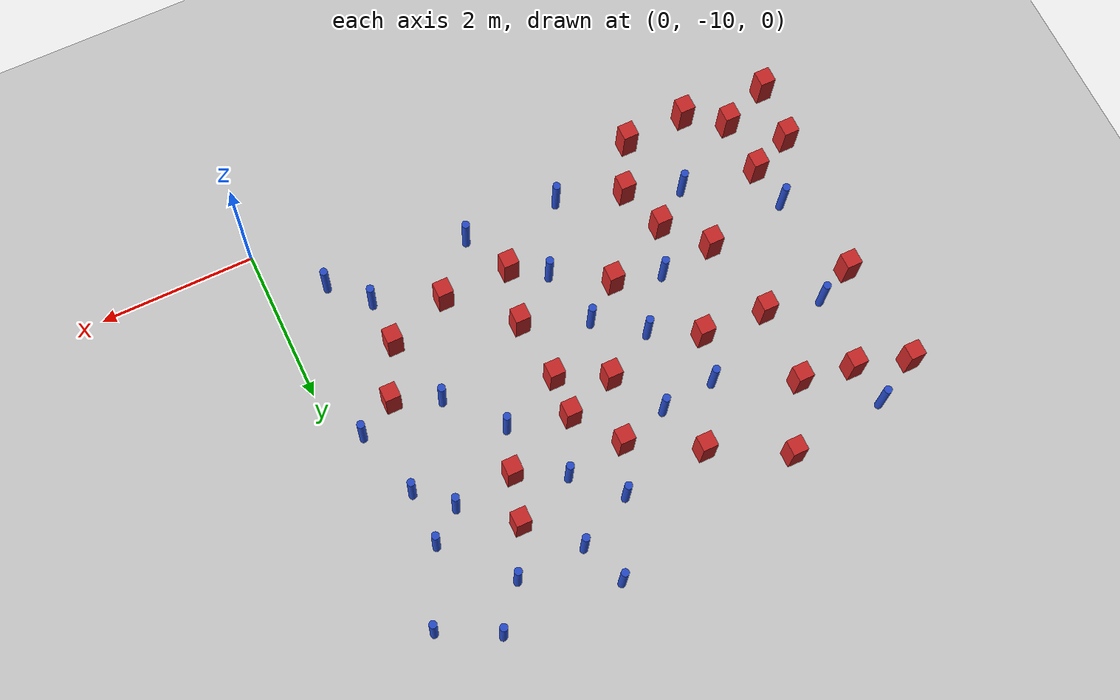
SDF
<sdf version="1.6">
 <world name="default">
  <model name="ground_plane">
   <static>1</static>
   <link name="link">
    <collision name="collision">
     <geometry><plane><normal>0 0 1</normal><size>100 100</size></plane></geometry>
     <surface><friction><ode><mu>100</mu><mu2>50</mu2></ode></friction></surface>
    </collision>
    <visual name="visual">
     <cast_shadows>0</cast_shadows>
     <geometry><plane><normal>0 0 1</normal><size>100 100</size></plane></geometry>
     <material>
      <ambient>1.0 1.0 1.0 1.0</ambient>
      <diffuse>0.8 0.8 0.8 1.0</diffuse>
      <specular>0.01 0.01 0.01 1.000000</specular>
     </material>
    </visual>
   </link>
  </model>
  <model name="square_post_obstacle6">
   <static>true</static>
   <pose>-1.59563792283 -5.44610857162 8.22691968438e-08 7.2212513382e-06 -7.54495500217e-07 2.29674213826e-05</pose>
   <link name="link">
    <pose>0 0 0.25 0 -0 0</pose>
    <inertial>
     <mass>100</mass>
     <inertia>
      <ixx>0.166667</ixx>
      <ixy>0</ixy>
      <ixz>0</ixz>
      <iyy>0.166667</iyy>
      <iyz>0</iyz>
      <izz>0.166667</izz>
     </inertia>
    </inertial>
    <collision name="collision"><geometry><box><size>.2 .2 .5</size></box></geometry></collision>
    <visual name="visual">
     <geometry><box><size>.2 .2 .5</size></box></geometry>
     <material>
      <script><name>Gazebo/Red</name><uri>file://media/materials/scripts/gazebo.material</uri></script>
     </material>
    </visual>
   </link>
  </model>
  <model name="pole_obstacle6">
   <static>true</static>
   <pose>-2.38911364251 -4.31858731194 2.88873142074e-08 -9.90536689859e-09 4.60219948989e-07 -1.20965994961e-07</pose>
   <link name="link">
    <pose>0 0 0.3 0 -0 0</pose>
    <inertial>
     <mass>1</mass>
     <inertia><ixx>0.145833</ixx><ixy>0</ixy><ixz>0</ixz><iyy>0.145833</iyy><iyz>0</iyz><izz>0.125</izz></inertia>
    </inertial>
    <collision name="collision">
     <geometry><cylinder><radius>0.05</radius><length>.6</length></cylinder></geometry>
    </collision>
    <visual name="visual">
     <geometry><cylinder><radius>0.05</radius><length>.6</length></cylinder></geometry>
     <material>
      <script><name>Gazebo/Blue</name><uri>file://media/materials/scripts/gazebo.material</uri></script>
     </material>
    </visual>
   </link>
  </model>
  <model name="square_post_obstacle9">
   <static>true</static>
   <pose>-4.64700420513 -6.66995732465 8.22691968438e-08 7.2212513382e-06 -7.54495500217e-07 2.29674213826e-05</pose>
   <link name="link">
    <pose>0 0 0.25 0 -0 0</pose>
    <inertial>
     <mass>100</mass>
     <inertia>
      <ixx>0.166667</ixx>
      <ixy>0</ixy>
      <ixz>0</ixz>
      <iyy>0.166667</iyy>
      <iyz>0</iyz>
      <izz>0.166667</izz>
     </inertia>
    </inertial>
    <collision name="collision"><geometry><box><size>.2 .2 .5</size></box></geometry></collision>
    <visual name="visual">
     <geometry><box><size>.2 .2 .5</size></box></geometry>
     <material>
      <script><name>Gazebo/Red</name><uri>file://media/materials/scripts/gazebo.material</uri></script>
     </material>
    </visual>
   </link>
  </model>
  <model name="square_post_obstacle11">
   <static>true</static>
   <pose>-3.14499950519 -5.83607089433 8.22691968438e-08 7.2212513382e-06 -7.54495500217e-07 2.29674213826e-05</pose>
   <link name="link">
    <pose>0 0 0.25 0 -0 0</pose>
    <inertial>
     <mass>100</mass>
     <inertia>
      <ixx>0.166667</ixx>
      <ixy>0</ixy>
      <ixz>0</ixz>
      <iyy>0.166667</iyy>
      <iyz>0</iyz>
      <izz>0.166667</izz>
     </inertia>
    </inertial>
    <collision name="collision"><geometry><box><size>.2 .2 .5</size></box></geometry></collision>
    <visual name="visual">
     <geometry><box><size>.2 .2 .5</size></box></geometry>
     <material>
      <script><name>Gazebo/Red</name><uri>file://media/materials/scripts/gazebo.material</uri></script>
     </material>
    </visual>
   </link>
  </model>
  <model name="pole_obstacle8">
   <static>true</static>
   <pose>-3.47671300704 -7.40838706162 2.88873142074e-08 -9.90536692062e-09 4.60219948937e-07 -1.20965994985e-07</pose>
   <link name="link">
    <pose>0 0 0.3 0 -0 0</pose>
    <inertial>
     <mass>1</mass>
     <inertia><ixx>0.145833</ixx><ixy>0</ixy><ixz>0</ixz><iyy>0.145833</iyy><iyz>0</iyz><izz>0.125</izz></inertia>
    </inertial>
    <collision name="collision">
     <geometry><cylinder><radius>0.05</radius><length>.6</length></cylinder></geometry>
    </collision>
    <visual name="visual">
     <geometry><cylinder><radius>0.05</radius><length>.6</length></cylinder></geometry>
     <material>
      <script><name>Gazebo/Blue</name><uri>file://media/materials/scripts/gazebo.material</uri></script>
     </material>
    </visual>
   </link>
  </model>
  <model name="square_post_obstacle14">
   <static>true</static>
   <pose>-1.14787507344 -8.16569303393 8.22691968438e-08 7.22125133819e-06 -7.54495500217e-07 2.29674213826e-05</pose>
   <link name="link">
    <pose>0 0 0.25 0 -0 0</pose>
    <inertial>
     <mass>100</mass>
     <inertia>
      <ixx>0.166667</ixx>
      <ixy>0</ixy>
      <ixz>0</ixz>
      <iyy>0.166667</iyy>
      <iyz>0</iyz>
      <izz>0.166667</izz>
     </inertia>
    </inertial>
    <collision name="collision"><geometry><box><size>.2 .2 .5</size></box></geometry></collision>
    <visual name="visual">
     <geometry><box><size>.2 .2 .5</size></box></geometry>
     <material>
      <script><name>Gazebo/Red</name><uri>file://media/materials/scripts/gazebo.material</uri></script>
     </material>
    </visual>
   </link>
  </model>
  <model name="square_post_obstacle16">
   <static>true</static>
   <pose>-0.82586581585 -7.49425958499 8.22691968438e-08 7.2212513382e-06 -7.54495500217e-07 2.29674213826e-05</pose>
   <link name="link">
    <pose>0 0 0.25 0 -0 0</pose>
    <inertial>
     <mass>100</mass>
     <inertia>
      <ixx>0.166667</ixx>
      <ixy>0</ixy>
      <ixz>0</ixz>
      <iyy>0.166667</iyy>
      <iyz>0</iyz>
      <izz>0.166667</izz>
     </inertia>
    </inertial>
    <collision name="collision"><geometry><box><size>.2 .2 .5</size></box></geometry></collision>
    <visual name="visual">
     <geometry><box><size>.2 .2 .5</size></box></geometry>
     <material>
      <script><name>Gazebo/Red</name><uri>file://media/materials/scripts/gazebo.material</uri></script>
     </material>
    </visual>
   </link>
  </model>
  <model name="square_post_obstacle21">
   <static>true</static>
   <pose>-2.66958991058 -7.7484911874 8.22691968438e-08 7.22125133819e-06 -7.54495500217e-07 2.29674213826e-05</pose>
   <link name="link">
    <pose>0 0 0.25 0 -0 0</pose>
    <inertial>
     <mass>100</mass>
     <inertia>
      <ixx>0.166667</ixx>
      <ixy>0</ixy>
      <ixz>0</ixz>
      <iyy>0.166667</iyy>
      <iyz>0</iyz>
      <izz>0.166667</izz>
     </inertia>
    </inertial>
    <collision name="collision"><geometry><box><size>.2 .2 .5</size></box></geometry></collision>
    <visual name="visual">
     <geometry><box><size>.2 .2 .5</size></box></geometry>
     <material>
      <script><name>Gazebo/Red</name><uri>file://media/materials/scripts/gazebo.material</uri></script>
     </material>
    </visual>
   </link>
  </model>
  <model name="pole_obstacle13">
   <static>true</static>
   <pose>-6.36341904587 -7.83813379284 2.88873142074e-08 -9.90536690842e-09 4.60219948965e-07 -1.20965994976e-07</pose>
   <link name="link">
    <pose>0 0 0.3 0 -0 0</pose>
    <inertial>
     <mass>1</mass>
     <inertia><ixx>0.145833</ixx><ixy>0</ixy><ixz>0</ixz><iyy>0.145833</iyy><iyz>0</iyz><izz>0.125</izz></inertia>
    </inertial>
    <collision name="collision">
     <geometry><cylinder><radius>0.05</radius><length>.6</length></cylinder></geometry>
    </collision>
    <visual name="visual">
     <geometry><cylinder><radius>0.05</radius><length>.6</length></cylinder></geometry>
     <material>
      <script><name>Gazebo/Blue</name><uri>file://media/materials/scripts/gazebo.material</uri></script>
     </material>
    </visual>
   </link>
  </model>
  <model name="square_post_obstacle26">
   <static>true</static>
   <pose>-6.24597658063 -9.10434536315 8.22691968438e-08 7.22125133819e-06 -7.54495500217e-07 2.29674213826e-05</pose>
   <link name="link">
    <pose>0 0 0.25 0 -0 0</pose>
    <inertial>
     <mass>100</mass>
     <inertia>
      <ixx>0.166667</ixx>
      <ixy>0</ixy>
      <ixz>0</ixz>
      <iyy>0.166667</iyy>
      <iyz>0</iyz>
      <izz>0.166667</izz>
     </inertia>
    </inertial>
    <collision name="collision"><geometry><box><size>.2 .2 .5</size></box></geometry></collision>
    <visual name="visual">
     <geometry><box><size>.2 .2 .5</size></box></geometry>
     <material>
      <script><name>Gazebo/Red</name><uri>file://media/materials/scripts/gazebo.material</uri></script>
     </material>
    </visual>
   </link>
  </model>
  <model name="pole_obstacle21">
   <static>true</static>
   <pose>-4.56347880412 -7.59551017704 2.88873142074e-08 -9.90536690842e-09 4.60219948965e-07 -1.20965994976e-07</pose>
   <link name="link">
    <pose>0 0 0.3 0 -0 0</pose>
    <inertial>
     <mass>1</mass>
     <inertia><ixx>0.145833</ixx><ixy>0</ixy><ixz>0</ixz><iyy>0.145833</iyy><iyz>0</iyz><izz>0.125</izz></inertia>
    </inertial>
    <collision name="collision">
     <geometry><cylinder><radius>0.05</radius><length>.6</length></cylinder></geometry>
    </collision>
    <visual name="visual">
     <geometry><cylinder><radius>0.05</radius><length>.6</length></cylinder></geometry>
     <material>
      <script><name>Gazebo/Blue</name><uri>file://media/materials/scripts/gazebo.material</uri></script>
     </material>
    </visual>
   </link>
  </model>
  <model name="square_post_obstacle31">
   <static>true</static>
   <pose>-5.44097862834 -5.64113850015 8.22691968438e-08 7.22125133819e-06 -7.54495500217e-07 2.29674213826e-05</pose>
   <link name="link">
    <pose>0 0 0.25 0 -0 0</pose>
    <inertial>
     <mass>100</mass>
     <inertia>
      <ixx>0.166667</ixx>
      <ixy>0</ixy>
      <ixz>0</ixz>
      <iyy>0.166667</iyy>
      <iyz>0</iyz>
      <izz>0.166667</izz>
     </inertia>
    </inertial>
    <collision name="collision"><geometry><box><size>.2 .2 .5</size></box></geometry></collision>
    <visual name="visual">
     <geometry><box><size>.2 .2 .5</size></box></geometry>
     <material>
      <script><name>Gazebo/Red</name><uri>file://media/materials/scripts/gazebo.material</uri></script>
     </material>
    </visual>
   </link>
  </model>
  <model name="pole_obstacle24">
   <static>true</static>
   <pose>-2.53710232405 -9.05511088529 2.88873142074e-08 -9.90536692318e-09 4.6021994893e-07 -1.20965994988e-07</pose>
   <link name="link">
    <pose>0 0 0.3 0 -0 0</pose>
    <inertial>
     <mass>1</mass>
     <inertia><ixx>0.145833</ixx><ixy>0</ixy><ixz>0</ixz><iyy>0.145833</iyy><iyz>0</iyz><izz>0.125</izz></inertia>
    </inertial>
    <collision name="collision">
     <geometry><cylinder><radius>0.05</radius><length>.6</length></cylinder></geometry>
    </collision>
    <visual name="visual">
     <geometry><cylinder><radius>0.05</radius><length>.6</length></cylinder></geometry>
     <material>
      <script><name>Gazebo/Blue</name><uri>file://media/materials/scripts/gazebo.material</uri></script>
     </material>
    </visual>
   </link>
  </model>
  <model name="pole_obstacle25">
   <static>true</static>
   <pose>-0.136498784934 -4.70079630426 2.88873142074e-08 -9.90536689816e-09 4.6021994899e-07 -1.20965994961e-07</pose>
   <link name="link">
    <pose>0 0 0.3 0 -0 0</pose>
    <inertial>
     <mass>1</mass>
     <inertia><ixx>0.145833</ixx><ixy>0</ixy><ixz>0</ixz><iyy>0.145833</iyy><iyz>0</iyz><izz>0.125</izz></inertia>
    </inertial>
    <collision name="collision">
     <geometry><cylinder><radius>0.05</radius><length>.6</length></cylinder></geometry>
    </collision>
    <visual name="visual">
     <geometry><cylinder><radius>0.05</radius><length>.6</length></cylinder></geometry>
     <material>
      <script><name>Gazebo/Blue</name><uri>file://media/materials/scripts/gazebo.material</uri></script>
     </material>
    </visual>
   </link>
  </model>
  <model name="pole_obstacle28">
   <static>true</static>
   <pose>-6.19654823349 -6.47003015711 2.88873142074e-08 -9.90536690842e-09 4.60219948965e-07 -1.20965994976e-07</pose>
   <link name="link">
    <pose>0 0 0.3 0 -0 0</pose>
    <inertial>
     <mass>1</mass>
     <inertia><ixx>0.145833</ixx><ixy>0</ixy><ixz>0</ixz><iyy>0.145833</iyy><iyz>0</iyz><izz>0.125</izz></inertia>
    </inertial>
    <collision name="collision">
     <geometry><cylinder><radius>0.05</radius><length>.6</length></cylinder></geometry>
    </collision>
    <visual name="visual">
     <geometry><cylinder><radius>0.05</radius><length>.6</length></cylinder></geometry>
     <material>
      <script><name>Gazebo/Blue</name><uri>file://media/materials/scripts/gazebo.material</uri></script>
     </material>
    </visual>
   </link>
  </model>
  <model name="pole_obstacle30">
   <static>true</static>
   <pose>-6.21394543785 -4.98661376894 2.88873142074e-08 -9.90536690842e-09 4.60219948965e-07 -1.20965994976e-07</pose>
   <link name="link">
    <pose>0 0 0.3 0 -0 0</pose>
    <inertial>
     <mass>1</mass>
     <inertia><ixx>0.145833</ixx><ixy>0</ixy><ixz>0</ixz><iyy>0.145833</iyy><iyz>0</iyz><izz>0.125</izz></inertia>
    </inertial>
    <collision name="collision">
     <geometry><cylinder><radius>0.05</radius><length>.6</length></cylinder></geometry>
    </collision>
    <visual name="visual">
     <geometry><cylinder><radius>0.05</radius><length>.6</length></cylinder></geometry>
     <material>
      <script><name>Gazebo/Blue</name><uri>file://media/materials/scripts/gazebo.material</uri></script>
     </material>
    </visual>
   </link>
  </model>
  <model name="pole_obstacle38">
   <static>true</static>
   <pose>-0.338095006668 -7.23412609482 2.88873142074e-08 -9.90536689683e-09 4.60219948993e-07 -1.20965994957e-07</pose>
   <link name="link">
    <pose>0 0 0.3 0 -0 0</pose>
    <inertial>
     <mass>1</mass>
     <inertia><ixx>0.145833</ixx><ixy>0</ixy><ixz>0</ixz><iyy>0.145833</iyy><iyz>0</iyz><izz>0.125</izz></inertia>
    </inertial>
    <collision name="collision">
     <geometry><cylinder><radius>0.05</radius><length>.6</length></cylinder></geometry>
    </collision>
    <visual name="visual">
     <geometry><cylinder><radius>0.05</radius><length>.6</length></cylinder></geometry>
     <material>
      <script><name>Gazebo/Blue</name><uri>file://media/materials/scripts/gazebo.material</uri></script>
     </material>
    </visual>
   </link>
  </model>
  <model name="square_post_obstacle38">
   <static>true</static>
   <pose>-3.99309158553 -5.34929670442 8.22691968438e-08 7.22125133819e-06 -7.54495500217e-07 2.29674213826e-05</pose>
   <link name="link">
    <pose>0 0 0.25 0 -0 0</pose>
    <inertial>
     <mass>100</mass>
     <inertia>
      <ixx>0.166667</ixx>
      <ixy>0</ixy>
      <ixz>0</ixz>
      <iyy>0.166667</iyy>
      <iyz>0</iyz>
      <izz>0.166667</izz>
     </inertia>
    </inertial>
    <collision name="collision"><geometry><box><size>.2 .2 .5</size></box></geometry></collision>
    <visual name="visual">
     <geometry><box><size>.2 .2 .5</size></box></geometry>
     <material>
      <script><name>Gazebo/Red</name><uri>file://media/materials/scripts/gazebo.material</uri></script>
     </material>
    </visual>
   </link>
  </model>
  <model name="pole_obstacle41">
   <static>true</static>
   <pose>-2.16148126206 -4.8774309605 2.88873142074e-08 -9.90536689859e-09 4.60219948989e-07 -1.20965994961e-07</pose>
   <link name="link">
    <pose>0 0 0.3 0 -0 0</pose>
    <inertial>
     <mass>1</mass>
     <inertia><ixx>0.145833</ixx><ixy>0</ixy><ixz>0</ixz><iyy>0.145833</iyy><iyz>0</iyz><izz>0.125</izz></inertia>
    </inertial>
    <collision name="collision">
     <geometry><cylinder><radius>0.05</radius><length>.6</length></cylinder></geometry>
    </collision>
    <visual name="visual">
     <geometry><cylinder><radius>0.05</radius><length>.6</length></cylinder></geometry>
     <material>
      <script><name>Gazebo/Blue</name><uri>file://media/materials/scripts/gazebo.material</uri></script>
     </material>
    </visual>
   </link>
  </model>
  <model name="square_post_obstacle58">
   <static>true</static>
   <pose>-6.11708549932 -5.52535865049 8.22691968438e-08 7.22125133819e-06 -7.54495500217e-07 2.29674213826e-05</pose>
   <link name="link">
    <pose>0 0 0.25 0 -0 0</pose>
    <inertial>
     <mass>100</mass>
     <inertia>
      <ixx>0.166667</ixx>
      <ixy>0</ixy>
      <ixz>0</ixz>
      <iyy>0.166667</iyy>
      <iyz>0</iyz>
      <izz>0.166667</izz>
     </inertia>
    </inertial>
    <collision name="collision"><geometry><box><size>.2 .2 .5</size></box></geometry></collision>
    <visual name="visual">
     <geometry><box><size>.2 .2 .5</size></box></geometry>
     <material>
      <script><name>Gazebo/Red</name><uri>file://media/materials/scripts/gazebo.material</uri></script>
     </material>
    </visual>
   </link>
  </model>
  <model name="pole_obstacle56">
   <static>true</static>
   <pose>-3.78361683981 -9.05528646652 2.88873142074e-08 -9.90536692318e-09 4.6021994893e-07 -1.20965994988e-07</pose>
   <link name="link">
    <pose>0 0 0.3 0 -0 0</pose>
    <inertial>
     <mass>1</mass>
     <inertia><ixx>0.145833</ixx><ixy>0</ixy><ixz>0</ixz><iyy>0.145833</iyy><iyz>0</iyz><izz>0.125</izz></inertia>
    </inertial>
    <collision name="collision">
     <geometry><cylinder><radius>0.05</radius><length>.6</length></cylinder></geometry>
    </collision>
    <visual name="visual">
     <geometry><cylinder><radius>0.05</radius><length>.6</length></cylinder></geometry>
     <material>
      <script><name>Gazebo/Blue</name><uri>file://media/materials/scripts/gazebo.material</uri></script>
     </material>
    </visual>
   </link>
  </model>
  <model name="square_post_obstacle69">
   <static>true</static>
   <pose>-2.71679834702 -6.40995941505 8.22691968438e-08 7.2212513382e-06 -7.54495500217e-07 2.29674213826e-05</pose>
   <link name="link">
    <pose>0 0 0.25 0 -0 0</pose>
    <inertial>
     <mass>100</mass>
     <inertia>
      <ixx>0.166667</ixx>
      <ixy>0</ixy>
      <ixz>0</ixz>
      <iyy>0.166667</iyy>
      <iyz>0</iyz>
      <izz>0.166667</izz>
     </inertia>
    </inertial>
    <collision name="collision"><geometry><box><size>.2 .2 .5</size></box></geometry></collision>
    <visual name="visual">
     <geometry><box><size>.2 .2 .5</size></box></geometry>
     <material>
      <script><name>Gazebo/Red</name><uri>file://media/materials/scripts/gazebo.material</uri></script>
     </material>
    </visual>
   </link>
  </model>
  <model name="square_post_obstacle70">
   <static>true</static>
   <pose>-6.88262609973 -9.36276610339 8.22691968438e-08 7.22125133819e-06 -7.54495500217e-07 2.29674213826e-05</pose>
   <link name="link">
    <pose>0 0 0.25 0 -0 0</pose>
    <inertial>
     <mass>100</mass>
     <inertia>
      <ixx>0.166667</ixx>
      <ixy>0</ixy>
      <ixz>0</ixz>
      <iyy>0.166667</iyy>
      <iyz>0</iyz>
      <izz>0.166667</izz>
     </inertia>
    </inertial>
    <collision name="collision"><geometry><box><size>.2 .2 .5</size></box></geometry></collision>
    <visual name="visual">
     <geometry><box><size>.2 .2 .5</size></box></geometry>
     <material>
      <script><name>Gazebo/Red</name><uri>file://media/materials/scripts/gazebo.material</uri></script>
     </material>
    </visual>
   </link>
  </model>
  <model name="pole_obstacle76">
   <static>true</static>
   <pose>-1.1300364303 -8.77175911142 2.88873142074e-08 -9.90536690474e-09 4.60219948974e-07 -1.2096599497e-07</pose>
   <link name="link">
    <pose>0 0 0.3 0 -0 0</pose>
    <inertial>
     <mass>1</mass>
     <inertia><ixx>0.145833</ixx><ixy>0</ixy><ixz>0</ixz><iyy>0.145833</iyy><iyz>0</iyz><izz>0.125</izz></inertia>
    </inertial>
    <collision name="collision">
     <geometry><cylinder><radius>0.05</radius><length>.6</length></cylinder></geometry>
    </collision>
    <visual name="visual">
     <geometry><cylinder><radius>0.05</radius><length>.6</length></cylinder></geometry>
     <material>
      <script><name>Gazebo/Blue</name><uri>file://media/materials/scripts/gazebo.material</uri></script>
     </material>
    </visual>
   </link>
  </model>
  <model name="pole_obstacle92">
   <static>true</static>
   <pose>-1.95416404792 -6.59630058341 2.88873142074e-08 -9.90536689721e-09 4.60219948992e-07 -1.20965994958e-07</pose>
   <link name="link">
    <pose>0 0 0.3 0 -0 0</pose>
    <inertial>
     <mass>1</mass>
     <inertia><ixx>0.145833</ixx><ixy>0</ixy><ixz>0</ixz><iyy>0.145833</iyy><iyz>0</iyz><izz>0.125</izz></inertia>
    </inertial>
    <collision name="collision">
     <geometry><cylinder><radius>0.05</radius><length>.6</length></cylinder></geometry>
    </collision>
    <visual name="visual">
     <geometry><cylinder><radius>0.05</radius><length>.6</length></cylinder></geometry>
     <material>
      <script><name>Gazebo/Blue</name><uri>file://media/materials/scripts/gazebo.material</uri></script>
     </material>
    </visual>
   </link>
  </model>
  <model name="square_post_obstacle83">
   <static>true</static>
   <pose>-4.82357012245 -8.19386988251 8.22691968438e-08 7.2212513382e-06 -7.54495500217e-07 2.29674213826e-05</pose>
   <link name="link">
    <pose>0 0 0.25 0 -0 0</pose>
    <inertial>
     <mass>100</mass>
     <inertia>
      <ixx>0.166667</ixx>
      <ixy>0</ixy>
      <ixz>0</ixz>
      <iyy>0.166667</iyy>
      <iyz>0</iyz>
      <izz>0.166667</izz>
     </inertia>
    </inertial>
    <collision name="collision"><geometry><box><size>.2 .2 .5</size></box></geometry></collision>
    <visual name="visual">
     <geometry><box><size>.2 .2 .5</size></box></geometry>
     <material>
      <script><name>Gazebo/Red</name><uri>file://media/materials/scripts/gazebo.material</uri></script>
     </material>
    </visual>
   </link>
  </model>
  <model name="pole_obstacle97">
   <static>true</static>
   <pose>-2.88442294583 -5.23039444212 2.88873142074e-08 -9.90536689859e-09 4.60219948989e-07 -1.20965994961e-07</pose>
   <link name="link">
    <pose>0 0 0.3 0 -0 0</pose>
    <inertial>
     <mass>1</mass>
     <inertia><ixx>0.145833</ixx><ixy>0</ixy><ixz>0</ixz><iyy>0.145833</iyy><iyz>0</iyz><izz>0.125</izz></inertia>
    </inertial>
    <collision name="collision">
     <geometry><cylinder><radius>0.05</radius><length>.6</length></cylinder></geometry>
    </collision>
    <visual name="visual">
     <geometry><cylinder><radius>0.05</radius><length>.6</length></cylinder></geometry>
     <material>
      <script><name>Gazebo/Blue</name><uri>file://media/materials/scripts/gazebo.material</uri></script>
     </material>
    </visual>
   </link>
  </model>
  <model name="pole_obstacle99">
   <static>true</static>
   <pose>-3.27478693399 -8.18617608352 2.88873142074e-08 -9.90536692318e-09 4.6021994893e-07 -1.20965994988e-07</pose>
   <link name="link">
    <pose>0 0 0.3 0 -0 0</pose>
    <inertial>
     <mass>1</mass>
     <inertia><ixx>0.145833</ixx><ixy>0</ixy><ixz>0</ixz><iyy>0.145833</iyy><iyz>0</iyz><izz>0.125</izz></inertia>
    </inertial>
    <collision name="collision">
     <geometry><cylinder><radius>0.05</radius><length>.6</length></cylinder></geometry>
    </collision>
    <visual name="visual">
     <geometry><cylinder><radius>0.05</radius><length>.6</length></cylinder></geometry>
     <material>
      <script><name>Gazebo/Blue</name><uri>file://media/materials/scripts/gazebo.material</uri></script>
     </material>
    </visual>
   </link>
  </model>
  <model name="square_post_obstacle88">
   <static>true</static>
   <pose>-1.76935905454 -6.04848786119 8.22691968438e-08 7.2212513382e-06 -7.54495500217e-07 2.29674213826e-05</pose>
   <link name="link">
    <pose>0 0 0.25 0 -0 0</pose>
    <inertial>
     <mass>100</mass>
     <inertia>
      <ixx>0.166667</ixx>
      <ixy>0</ixy>
      <ixz>0</ixz>
      <iyy>0.166667</iyy>
      <iyz>0</iyz>
      <izz>0.166667</izz>
     </inertia>
    </inertial>
    <collision name="collision"><geometry><box><size>.2 .2 .5</size></box></geometry></collision>
    <visual name="visual">
     <geometry><box><size>.2 .2 .5</size></box></geometry>
     <material>
      <script><name>Gazebo/Red</name><uri>file://media/materials/scripts/gazebo.material</uri></script>
     </material>
    </visual>
   </link>
  </model>
  <model name="square_post_obstacle89">
   <static>true</static>
   <pose>-5.77669745965 -9.44524650333 8.22691968438e-08 7.22125133819e-06 -7.54495500217e-07 2.29674213826e-05</pose>
   <link name="link">
    <pose>0 0 0.25 0 -0 0</pose>
    <inertial>
     <mass>100</mass>
     <inertia>
      <ixx>0.166667</ixx>
      <ixy>0</ixy>
      <ixz>0</ixz>
      <iyy>0.166667</iyy>
      <iyz>0</iyz>
      <izz>0.166667</izz>
     </inertia>
    </inertial>
    <collision name="collision"><geometry><box><size>.2 .2 .5</size></box></geometry></collision>
    <visual name="visual">
     <geometry><box><size>.2 .2 .5</size></box></geometry>
     <material>
      <script><name>Gazebo/Red</name><uri>file://media/materials/scripts/gazebo.material</uri></script>
     </material>
    </visual>
   </link>
  </model>
  <model name="pole_obstacle106">
   <static>true</static>
   <pose>-5.30336558549 -8.5383002827 2.88873142074e-08 -9.9053668967e-09 4.60219948993e-07 -1.20965994957e-07</pose>
   <link name="link">
    <pose>0 0 0.3 0 -0 0</pose>
    <inertial>
     <mass>1</mass>
     <inertia><ixx>0.145833</ixx><ixy>0</ixy><ixz>0</ixz><iyy>0.145833</iyy><iyz>0</iyz><izz>0.125</izz></inertia>
    </inertial>
    <collision name="collision">
     <geometry><cylinder><radius>0.05</radius><length>.6</length></cylinder></geometry>
    </collision>
    <visual name="visual">
     <geometry><cylinder><radius>0.05</radius><length>.6</length></cylinder></geometry>
     <material>
      <script><name>Gazebo/Blue</name><uri>file://media/materials/scripts/gazebo.material</uri></script>
     </material>
    </visual>
   </link>
  </model>
  <model name="pole_obstacle112">
   <static>true</static>
   <pose>-3.77343231426 -6.00532183084 2.88873142074e-08 -9.90536692062e-09 4.60219948937e-07 -1.20965994985e-07</pose>
   <link name="link">
    <pose>0 0 0.3 0 -0 0</pose>
    <inertial>
     <mass>1</mass>
     <inertia><ixx>0.145833</ixx><ixy>0</ixy><ixz>0</ixz><iyy>0.145833</iyy><iyz>0</iyz><izz>0.125</izz></inertia>
    </inertial>
    <collision name="collision">
     <geometry><cylinder><radius>0.05</radius><length>.6</length></cylinder></geometry>
    </collision>
    <visual name="visual">
     <geometry><cylinder><radius>0.05</radius><length>.6</length></cylinder></geometry>
     <material>
      <script><name>Gazebo/Blue</name><uri>file://media/materials/scripts/gazebo.material</uri></script>
     </material>
    </visual>
   </link>
  </model>
  <model name="square_post_obstacle101">
   <static>true</static>
   <pose>-4.93815484949 -4.85396404606 8.22691968438e-08 7.22125133819e-06 -7.54495500217e-07 2.29674213826e-05</pose>
   <link name="link">
    <pose>0 0 0.25 0 -0 0</pose>
    <inertial>
     <mass>100</mass>
     <inertia>
      <ixx>0.166667</ixx>
      <ixy>0</ixy>
      <ixz>0</ixz>
      <iyy>0.166667</iyy>
      <iyz>0</iyz>
      <izz>0.166667</izz>
     </inertia>
    </inertial>
    <collision name="collision"><geometry><box><size>.2 .2 .5</size></box></geometry></collision>
    <visual name="visual">
     <geometry><box><size>.2 .2 .5</size></box></geometry>
     <material>
      <script><name>Gazebo/Red</name><uri>file://media/materials/scripts/gazebo.material</uri></script>
     </material>
    </visual>
   </link>
  </model>
  <model name="pole_obstacle118">
   <static>true</static>
   <pose>-0.703888527525 -9.21474772278 2.88873142074e-08 -9.90536690779e-09 4.60219948967e-07 -1.20965994975e-07</pose>
   <link name="link">
    <pose>0 0 0.3 0 -0 0</pose>
    <inertial>
     <mass>1</mass>
     <inertia><ixx>0.145833</ixx><ixy>0</ixy><ixz>0</ixz><iyy>0.145833</iyy><iyz>0</iyz><izz>0.125</izz></inertia>
    </inertial>
    <collision name="collision">
     <geometry><cylinder><radius>0.05</radius><length>.6</length></cylinder></geometry>
    </collision>
    <visual name="visual">
     <geometry><cylinder><radius>0.05</radius><length>.6</length></cylinder></geometry>
     <material>
      <script><name>Gazebo/Blue</name><uri>file://media/materials/scripts/gazebo.material</uri></script>
     </material>
    </visual>
   </link>
  </model>
  <model name="square_post_obstacle110">
   <static>true</static>
   <pose>-2.74950368555 -6.93772427673 8.22691968438e-08 7.22125133819e-06 -7.54495500217e-07 2.29674213826e-05</pose>
   <link name="link">
    <pose>0 0 0.25 0 -0 0</pose>
    <inertial>
     <mass>100</mass>
     <inertia>
      <ixx>0.166667</ixx>
      <ixy>0</ixy>
      <ixz>0</ixz>
      <iyy>0.166667</iyy>
      <iyz>0</iyz>
      <izz>0.166667</izz>
     </inertia>
    </inertial>
    <collision name="collision"><geometry><box><size>.2 .2 .5</size></box></geometry></collision>
    <visual name="visual">
     <geometry><box><size>.2 .2 .5</size></box></geometry>
     <material>
      <script><name>Gazebo/Red</name><uri>file://media/materials/scripts/gazebo.material</uri></script>
     </material>
    </visual>
   </link>
  </model>
  <model name="pole_obstacle129">
   <static>true</static>
   <pose>-2.37041582681 -5.73426669056 2.88873142074e-08 -9.90536689859e-09 4.60219948989e-07 -1.20965994961e-07</pose>
   <link name="link">
    <pose>0 0 0.3 0 -0 0</pose>
    <inertial>
     <mass>1</mass>
     <inertia><ixx>0.145833</ixx><ixy>0</ixy><ixz>0</ixz><iyy>0.145833</iyy><iyz>0</iyz><izz>0.125</izz></inertia>
    </inertial>
    <collision name="collision">
     <geometry><cylinder><radius>0.05</radius><length>.6</length></cylinder></geometry>
    </collision>
    <visual name="visual">
     <geometry><cylinder><radius>0.05</radius><length>.6</length></cylinder></geometry>
     <material>
      <script><name>Gazebo/Blue</name><uri>file://media/materials/scripts/gazebo.material</uri></script>
     </material>
    </visual>
   </link>
  </model>
  <model name="pole_obstacle131">
   <static>true</static>
   <pose>-4.47870647593 -6.07964429749 2.88873142074e-08 -9.90536690842e-09 4.60219948965e-07 -1.20965994976e-07</pose>
   <link name="link">
    <pose>0 0 0.3 0 -0 0</pose>
    <inertial>
     <mass>1</mass>
     <inertia><ixx>0.145833</ixx><ixy>0</ixy><ixz>0</ixz><iyy>0.145833</iyy><iyz>0</iyz><izz>0.125</izz></inertia>
    </inertial>
    <collision name="collision">
     <geometry><cylinder><radius>0.05</radius><length>.6</length></cylinder></geometry>
    </collision>
    <visual name="visual">
     <geometry><cylinder><radius>0.05</radius><length>.6</length></cylinder></geometry>
     <material>
      <script><name>Gazebo/Blue</name><uri>file://media/materials/scripts/gazebo.material</uri></script>
     </material>
    </visual>
   </link>
  </model>
  <model name="square_post_obstacle128">
   <static>true</static>
   <pose>-5.27940183446 -7.68370082758 8.22691968438e-08 7.22125133819e-06 -7.54495500217e-07 2.29674213826e-05</pose>
   <link name="link">
    <pose>0 0 0.25 0 -0 0</pose>
    <inertial>
     <mass>100</mass>
     <inertia>
      <ixx>0.166667</ixx>
      <ixy>0</ixy>
      <ixz>0</ixz>
      <iyy>0.166667</iyy>
      <iyz>0</iyz>
      <izz>0.166667</izz>
     </inertia>
    </inertial>
    <collision name="collision"><geometry><box><size>.2 .2 .5</size></box></geometry></collision>
    <visual name="visual">
     <geometry><box><size>.2 .2 .5</size></box></geometry>
     <material>
      <script><name>Gazebo/Red</name><uri>file://media/materials/scripts/gazebo.material</uri></script>
     </material>
    </visual>
   </link>
  </model>
  <model name="pole_obstacle144">
   <static>true</static>
   <pose>-1.3946650245 -7.24782701896 2.88873142074e-08 -9.90536689852e-09 4.60219948989e-07 -1.2096599496e-07</pose>
   <link name="link">
    <pose>0 0 0.3 0 -0 0</pose>
    <inertial>
     <mass>1</mass>
     <inertia><ixx>0.145833</ixx><ixy>0</ixy><ixz>0</ixz><iyy>0.145833</iyy><iyz>0</iyz><izz>0.125</izz></inertia>
    </inertial>
    <collision name="collision">
     <geometry><cylinder><radius>0.05</radius><length>.6</length></cylinder></geometry>
    </collision>
    <visual name="visual">
     <geometry><cylinder><radius>0.05</radius><length>.6</length></cylinder></geometry>
     <material>
      <script><name>Gazebo/Blue</name><uri>file://media/materials/scripts/gazebo.material</uri></script>
     </material>
    </visual>
   </link>
  </model>
  <model name="pole_obstacle146">
   <static>true</static>
   <pose>-0.855158592107 -4.33155472386 2.88873142074e-08 -9.90536689661e-09 4.60219948993e-07 -1.20965994957e-07</pose>
   <link name="link">
    <pose>0 0 0.3 0 -0 0</pose>
    <inertial>
     <mass>1</mass>
     <inertia><ixx>0.145833</ixx><ixy>0</ixy><ixz>0</ixz><iyy>0.145833</iyy><iyz>0</iyz><izz>0.125</izz></inertia>
    </inertial>
    <collision name="collision">
     <geometry><cylinder><radius>0.05</radius><length>.6</length></cylinder></geometry>
    </collision>
    <visual name="visual">
     <geometry><cylinder><radius>0.05</radius><length>.6</length></cylinder></geometry>
     <material>
      <script><name>Gazebo/Blue</name><uri>file://media/materials/scripts/gazebo.material</uri></script>
     </material>
    </visual>
   </link>
  </model>
  <model name="pole_obstacle155">
   <static>true</static>
   <pose>-1.28062165056 -4.8508417895 2.88873142074e-08 -9.90536689852e-09 4.60219948989e-07 -1.2096599496e-07</pose>
   <link name="link">
    <pose>0 0 0.3 0 -0 0</pose>
    <inertial>
     <mass>1</mass>
     <inertia><ixx>0.145833</ixx><ixy>0</ixy><ixz>0</ixz><iyy>0.145833</iyy><iyz>0</iyz><izz>0.125</izz></inertia>
    </inertial>
    <collision name="collision">
     <geometry><cylinder><radius>0.05</radius><length>.6</length></cylinder></geometry>
    </collision>
    <visual name="visual">
     <geometry><cylinder><radius>0.05</radius><length>.6</length></cylinder></geometry>
     <material>
      <script><name>Gazebo/Blue</name><uri>file://media/materials/scripts/gazebo.material</uri></script>
     </material>
    </visual>
   </link>
  </model>
  <model name="square_post_obstacle151">
   <static>true</static>
   <pose>-5.48025696798 -6.62304917347 8.22691968438e-08 7.22125133819e-06 -7.54495500217e-07 2.29674213826e-05</pose>
   <link name="link">
    <pose>0 0 0.25 0 -0 0</pose>
    <inertial>
     <mass>100</mass>
     <inertia>
      <ixx>0.166667</ixx>
      <ixy>0</ixy>
      <ixz>0</ixz>
      <iyy>0.166667</iyy>
      <iyz>0</iyz>
      <izz>0.166667</izz>
     </inertia>
    </inertial>
    <collision name="collision"><geometry><box><size>.2 .2 .5</size></box></geometry></collision>
    <visual name="visual">
     <geometry><box><size>.2 .2 .5</size></box></geometry>
     <material>
      <script><name>Gazebo/Red</name><uri>file://media/materials/scripts/gazebo.material</uri></script>
     </material>
    </visual>
   </link>
  </model>
  <model name="pole_obstacle159">
   <static>true</static>
   <pose>-0.587049338085 -5.63316280716 2.88873142074e-08 -9.90536689661e-09 4.60219948993e-07 -1.20965994957e-07</pose>
   <link name="link">
    <pose>0 0 0.3 0 -0 0</pose>
    <inertial>
     <mass>1</mass>
     <inertia><ixx>0.145833</ixx><ixy>0</ixy><ixz>0</ixz><iyy>0.145833</iyy><iyz>0</iyz><izz>0.125</izz></inertia>
    </inertial>
    <collision name="collision">
     <geometry><cylinder><radius>0.05</radius><length>.6</length></cylinder></geometry>
    </collision>
    <visual name="visual">
     <geometry><cylinder><radius>0.05</radius><length>.6</length></cylinder></geometry>
     <material>
      <script><name>Gazebo/Blue</name><uri>file://media/materials/scripts/gazebo.material</uri></script>
     </material>
    </visual>
   </link>
  </model>
  <model name="square_post_obstacle152">
   <static>true</static>
   <pose>-2.84612910032 -8.46383877984 8.22691968438e-08 7.22125133819e-06 -7.54495500217e-07 2.29674213826e-05</pose>
   <link name="link">
    <pose>0 0 0.25 0 -0 0</pose>
    <inertial>
     <mass>100</mass>
     <inertia>
      <ixx>0.166667</ixx>
      <ixy>0</ixy>
      <ixz>0</ixz>
      <iyy>0.166667</iyy>
      <iyz>0</iyz>
      <izz>0.166667</izz>
     </inertia>
    </inertial>
    <collision name="collision"><geometry><box><size>.2 .2 .5</size></box></geometry></collision>
    <visual name="visual">
     <geometry><box><size>.2 .2 .5</size></box></geometry>
     <material>
      <script><name>Gazebo/Red</name><uri>file://media/materials/scripts/gazebo.material</uri></script>
     </material>
    </visual>
   </link>
  </model>
  <model name="pole_obstacle163">
   <static>true</static>
   <pose>-0.589168247462 -6.3353899388 2.88873142074e-08 -9.90536689661e-09 4.60219948993e-07 -1.20965994957e-07</pose>
   <link name="link">
    <pose>0 0 0.3 0 -0 0</pose>
    <inertial>
     <mass>1</mass>
     <inertia><ixx>0.145833</ixx><ixy>0</ixy><ixz>0</ixz><iyy>0.145833</iyy><iyz>0</iyz><izz>0.125</izz></inertia>
    </inertial>
    <collision name="collision">
     <geometry><cylinder><radius>0.05</radius><length>.6</length></cylinder></geometry>
    </collision>
    <visual name="visual">
     <geometry><cylinder><radius>0.05</radius><length>.6</length></cylinder></geometry>
     <material>
      <script><name>Gazebo/Blue</name><uri>file://media/materials/scripts/gazebo.material</uri></script>
     </material>
    </visual>
   </link>
  </model>
  <model name="square_post_obstacle157">
   <static>true</static>
   <pose>-6.82456306523 -8.6108630661 8.22691968438e-08 7.22125133819e-06 -7.54495500217e-07 2.29674213826e-05</pose>
   <link name="link">
    <pose>0 0 0.25 0 -0 0</pose>
    <inertial>
     <mass>100</mass>
     <inertia>
      <ixx>0.166667</ixx>
      <ixy>0</ixy>
      <ixz>0</ixz>
      <iyy>0.166667</iyy>
      <iyz>0</iyz>
      <izz>0.166667</izz>
     </inertia>
    </inertial>
    <collision name="collision"><geometry><box><size>.2 .2 .5</size></box></geometry></collision>
    <visual name="visual">
     <geometry><box><size>.2 .2 .5</size></box></geometry>
     <material>
      <script><name>Gazebo/Red</name><uri>file://media/materials/scripts/gazebo.material</uri></script>
     </material>
    </visual>
   </link>
  </model>
  <model name="square_post_obstacle160">
   <static>true</static>
   <pose>-3.95504426674 -7.76349050526 8.22691968438e-08 7.22125133819e-06 -7.54495500217e-07 2.29674213826e-05</pose>
   <link name="link">
    <pose>0 0 0.25 0 -0 0</pose>
    <inertial>
     <mass>100</mass>
     <inertia>
      <ixx>0.166667</ixx>
      <ixy>0</ixy>
      <ixz>0</ixz>
      <iyy>0.166667</iyy>
      <iyz>0</iyz>
      <izz>0.166667</izz>
     </inertia>
    </inertial>
    <collision name="collision"><geometry><box><size>.2 .2 .5</size></box></geometry></collision>
    <visual name="visual">
     <geometry><box><size>.2 .2 .5</size></box></geometry>
     <material>
      <script><name>Gazebo/Red</name><uri>file://media/materials/scripts/gazebo.material</uri></script>
     </material>
    </visual>
   </link>
  </model>
  <model name="square_post_obstacle183">
   <static>true</static>
   <pose>-1.95383254929 -8.45092422156 8.22691968438e-08 7.22125133819e-06 -7.54495500217e-07 2.29674213826e-05</pose>
   <link name="link">
    <pose>0 0 0.25 0 -0 0</pose>
    <inertial>
     <mass>100</mass>
     <inertia>
      <ixx>0.166667</ixx>
      <ixy>0</ixy>
      <ixz>0</ixz>
      <iyy>0.166667</iyy>
      <iyz>0</iyz>
      <izz>0.166667</izz>
     </inertia>
    </inertial>
    <collision name="collision"><geometry><box><size>.2 .2 .5</size></box></geometry></collision>
    <visual name="visual">
     <geometry><box><size>.2 .2 .5</size></box></geometry>
     <material>
      <script><name>Gazebo/Red</name><uri>file://media/materials/scripts/gazebo.material</uri></script>
     </material>
    </visual>
   </link>
  </model>
  <model name="square_post_obstacle190">
   <static>true</static>
   <pose>-6.79632443652 -5.31748878018 8.22691968438e-08 7.22125133819e-06 -7.54495500217e-07 2.29674213826e-05</pose>
   <link name="link">
    <pose>0 0 0.25 0 -0 0</pose>
    <inertial>
     <mass>100</mass>
     <inertia>
      <ixx>0.166667</ixx>
      <ixy>0</ixy>
      <ixz>0</ixz>
      <iyy>0.166667</iyy>
      <iyz>0</iyz>
      <izz>0.166667</izz>
     </inertia>
    </inertial>
    <collision name="collision"><geometry><box><size>.2 .2 .5</size></box></geometry></collision>
    <visual name="visual">
     <geometry><box><size>.2 .2 .5</size></box></geometry>
     <material>
      <script><name>Gazebo/Red</name><uri>file://media/materials/scripts/gazebo.material</uri></script>
     </material>
    </visual>
   </link>
  </model>
  <model name="pole_obstacle189">
   <static>true</static>
   <pose>-0.987522381108 -5.95349427134 2.88873142074e-08 -9.90536689644e-09 4.60219948994e-07 -1.20965994957e-07</pose>
   <link name="link">
    <pose>0 0 0.3 0 -0 0</pose>
    <inertial>
     <mass>1</mass>
     <inertia><ixx>0.145833</ixx><ixy>0</ixy><ixz>0</ixz><iyy>0.145833</iyy><iyz>0</iyz><izz>0.125</izz></inertia>
    </inertial>
    <collision name="collision">
     <geometry><cylinder><radius>0.05</radius><length>.6</length></cylinder></geometry>
    </collision>
    <visual name="visual">
     <geometry><cylinder><radius>0.05</radius><length>.6</length></cylinder></geometry>
     <material>
      <script><name>Gazebo/Blue</name><uri>file://media/materials/scripts/gazebo.material</uri></script>
     </material>
    </visual>
   </link>
  </model>
  <model name="square_post_obstacle204">
   <static>true</static>
   <pose>-4.6232552943 -8.80473133978 8.22691968438e-08 7.2212513382e-06 -7.54495500217e-07 2.29674213826e-05</pose>
   <link name="link">
    <pose>0 0 0.25 0 -0 0</pose>
    <inertial>
     <mass>100</mass>
     <inertia>
      <ixx>0.166667</ixx>
      <ixy>0</ixy>
      <ixz>0</ixz>
      <iyy>0.166667</iyy>
      <iyz>0</iyz>
      <izz>0.166667</izz>
     </inertia>
    </inertial>
    <collision name="collision"><geometry><box><size>.2 .2 .5</size></box></geometry></collision>
    <visual name="visual">
     <geometry><box><size>.2 .2 .5</size></box></geometry>
     <material>
      <script><name>Gazebo/Red</name><uri>file://media/materials/scripts/gazebo.material</uri></script>
     </material>
    </visual>
   </link>
  </model>
  <model name="square_post_obstacle205">
   <static>true</static>
   <pose>-4.95809812641 -9.4137026713 8.22691968438e-08 7.22125133819e-06 -7.54495500217e-07 2.29674213826e-05</pose>
   <link name="link">
    <pose>0 0 0.25 0 -0 0</pose>
    <inertial>
     <mass>100</mass>
     <inertia>
      <ixx>0.166667</ixx>
      <ixy>0</ixy>
      <ixz>0</ixz>
      <iyy>0.166667</iyy>
      <iyz>0</iyz>
      <izz>0.166667</izz>
     </inertia>
    </inertial>
    <collision name="collision"><geometry><box><size>.2 .2 .5</size></box></geometry></collision>
    <visual name="visual">
     <geometry><box><size>.2 .2 .5</size></box></geometry>
     <material>
      <script><name>Gazebo/Red</name><uri>file://media/materials/scripts/gazebo.material</uri></script>
     </material>
    </visual>
   </link>
  </model>
  <model name="square_post_obstacle210">
   <static>true</static>
   <pose>-3.37691970074 -6.64161135826 8.22691968438e-08 7.2212513382e-06 -7.54495500217e-07 2.29674213826e-05</pose>
   <link name="link">
    <pose>0 0 0.25 0 -0 0</pose>
    <inertial>
     <mass>100</mass>
     <inertia>
      <ixx>0.166667</ixx>
      <ixy>0</ixy>
      <ixz>0</ixz>
      <iyy>0.166667</iyy>
      <iyz>0</iyz>
      <izz>0.166667</izz>
     </inertia>
    </inertial>
    <collision name="collision"><geometry><box><size>.2 .2 .5</size></box></geometry></collision>
    <visual name="visual">
     <geometry><box><size>.2 .2 .5</size></box></geometry>
     <material>
      <script><name>Gazebo/Red</name><uri>file://media/materials/scripts/gazebo.material</uri></script>
     </material>
    </visual>
   </link>
  </model>
  <model name="pole_obstacle210">
   <static>true</static>
   <pose>-4.04216499253 -6.98222527823 2.88873142074e-08 -9.90536691069e-09 4.6021994896e-07 -1.20965994979e-07</pose>
   <link name="link">
    <pose>0 0 0.3 0 -0 0</pose>
    <inertial>
     <mass>1</mass>
     <inertia><ixx>0.145833</ixx><ixy>0</ixy><ixz>0</ixz><iyy>0.145833</iyy><iyz>0</iyz><izz>0.125</izz></inertia>
    </inertial>
    <collision name="collision">
     <geometry><cylinder><radius>0.05</radius><length>.6</length></cylinder></geometry>
    </collision>
    <visual name="visual">
     <geometry><cylinder><radius>0.05</radius><length>.6</length></cylinder></geometry>
     <material>
      <script><name>Gazebo/Blue</name><uri>file://media/materials/scripts/gazebo.material</uri></script>
     </material>
    </visual>
   </link>
  </model>
  <model name="square_post_obstacle212">
   <static>true</static>
   <pose>-6.67097458246 -6.6877560894 8.22691968438e-08 7.22125133819e-06 -7.54495500217e-07 2.29674213826e-05</pose>
   <link name="link">
    <pose>0 0 0.25 0 -0 0</pose>
    <inertial>
     <mass>100</mass>
     <inertia>
      <ixx>0.166667</ixx>
      <ixy>0</ixy>
      <ixz>0</ixz>
      <iyy>0.166667</iyy>
      <iyz>0</iyz>
      <izz>0.166667</izz>
     </inertia>
    </inertial>
    <collision name="collision"><geometry><box><size>.2 .2 .5</size></box></geometry></collision>
    <visual name="visual">
     <geometry><box><size>.2 .2 .5</size></box></geometry>
     <material>
      <script><name>Gazebo/Red</name><uri>file://media/materials/scripts/gazebo.material</uri></script>
     </material>
    </visual>
   </link>
  </model>
  <model name="square_post_obstacle213">
   <static>true</static>
   <pose>-6.27488116742 -8.37939372788 8.22691968438e-08 7.22125133819e-06 -7.54495500217e-07 2.29674213826e-05</pose>
   <link name="link">
    <pose>0 0 0.25 0 -0 0</pose>
    <inertial>
     <mass>100</mass>
     <inertia>
      <ixx>0.166667</ixx>
      <ixy>0</ixy>
      <ixz>0</ixz>
      <iyy>0.166667</iyy>
      <iyz>0</iyz>
      <izz>0.166667</izz>
     </inertia>
    </inertial>
    <collision name="collision"><geometry><box><size>.2 .2 .5</size></box></geometry></collision>
    <visual name="visual">
     <geometry><box><size>.2 .2 .5</size></box></geometry>
     <material>
      <script><name>Gazebo/Red</name><uri>file://media/materials/scripts/gazebo.material</uri></script>
     </material>
    </visual>
   </link>
  </model>
 </world>
</sdf>
